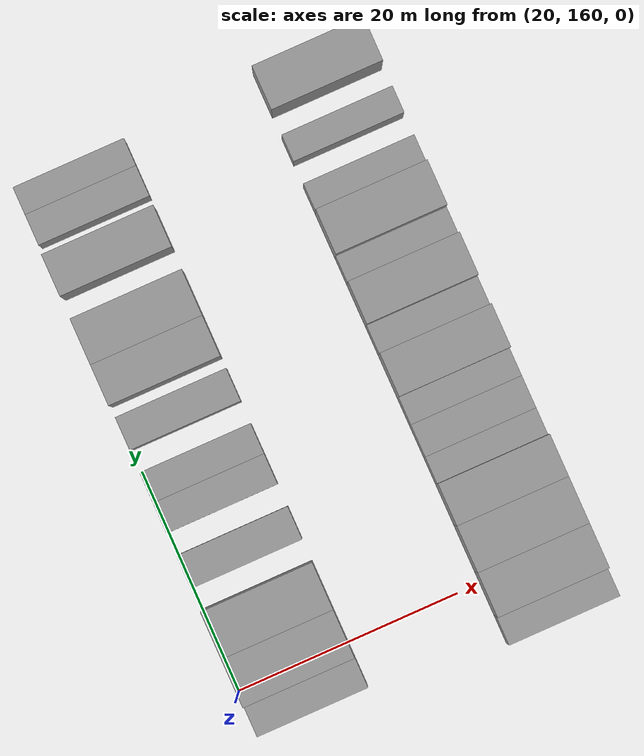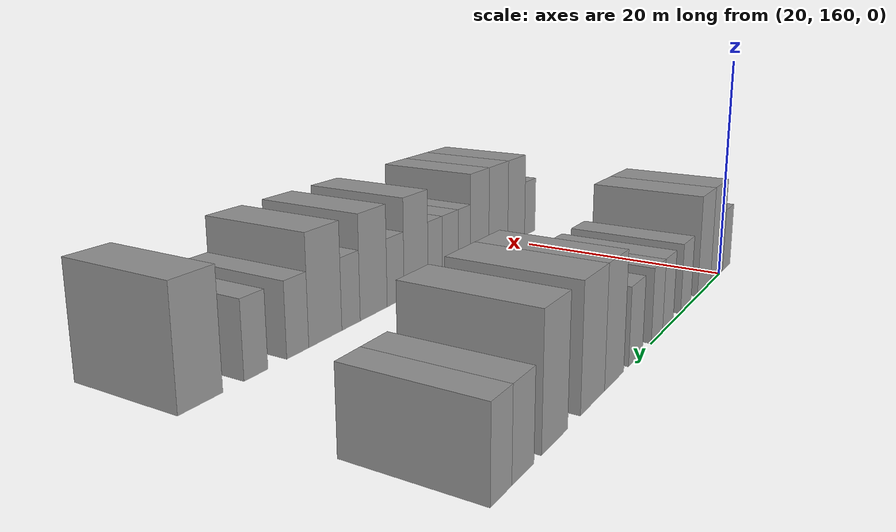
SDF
<sdf version="1.6">
 <world name="default">
  <model name="building_93">
   <static>1</static>
   <pose>25.0000 157.5284 0 0.000000 0.000000 0.000000</pose>
   <link name="link">
    <pose>0 0 3.00 0 0 0</pose>
    <collision name="collision"><geometry><box><size>10.0000 2.7844 6.0000</size></box></geometry></collision>
    <visual name="visual">
     <cast_shadows>0</cast_shadows>
     <geometry><box><size>10.0000 2.7844 6.0000</size></box></geometry>
     <material>
      <script>
       <uri>model://grey_wall/materials/scripts</uri>
       <uri>model://grey_wall/materials/textures</uri>
       <name>vrc/grey_wall</name>
      </script>
     </material>
    </visual>
   </link>
  </model>
  <model name="building_94">
   <static>1</static>
   <pose>25.0000 161.0848 0 0.000000 0.000000 0.000000</pose>
   <link name="link">
    <pose>0 0 4.50 0 0 0</pose>
    <collision name="collision"><geometry><box><size>10.0000 4.3284 9.0000</size></box></geometry></collision>
    <visual name="visual">
     <cast_shadows>0</cast_shadows>
     <geometry><box><size>10.0000 4.3284 9.0000</size></box></geometry>
     <material>
      <script>
       <uri>model://grey_wall/materials/scripts</uri>
       <uri>model://grey_wall/materials/textures</uri>
       <name>vrc/grey_wall</name>
      </script>
     </material>
    </visual>
   </link>
  </model>
  <model name="building_95">
   <static>1</static>
   <pose>25.0000 165.3684 0 0.000000 0.000000 0.000000</pose>
   <link name="link">
    <pose>0 0 4.50 0 0 0</pose>
    <collision name="collision"><geometry><box><size>10.0000 4.2388 9.0000</size></box></geometry></collision>
    <visual name="visual">
     <cast_shadows>0</cast_shadows>
     <geometry><box><size>10.0000 4.2388 9.0000</size></box></geometry>
     <material>
      <script>
       <uri>model://grey_wall/materials/scripts</uri>
       <uri>model://grey_wall/materials/textures</uri>
       <name>vrc/grey_wall</name>
      </script>
     </material>
    </visual>
   </link>
  </model>
  <model name="building_96">
   <static>1</static>
   <pose>25.0000 170.9753 0 0.000000 0.000000 0.000000</pose>
   <link name="link">
    <pose>0 0 3.00 0 0 0</pose>
    <collision name="collision"><geometry><box><size>10.0000 2.9751 6.0000</size></box></geometry></collision>
    <visual name="visual">
     <cast_shadows>0</cast_shadows>
     <geometry><box><size>10.0000 2.9751 6.0000</size></box></geometry>
     <material>
      <script>
       <uri>model://grey_wall/materials/scripts</uri>
       <uri>model://grey_wall/materials/textures</uri>
       <name>vrc/grey_wall</name>
      </script>
     </material>
    </visual>
   </link>
  </model>
  <model name="building_97">
   <static>1</static>
   <pose>25.0000 175.8394 0 0.000000 0.000000 0.000000</pose>
   <link name="link">
    <pose>0 0 3.00 0 0 0</pose>
    <collision name="collision"><geometry><box><size>10.0000 2.7530 6.0000</size></box></geometry></collision>
    <visual name="visual">
     <cast_shadows>0</cast_shadows>
     <geometry><box><size>10.0000 2.7530 6.0000</size></box></geometry>
     <material>
      <script>
       <uri>model://grey_wall/materials/scripts</uri>
       <uri>model://grey_wall/materials/textures</uri>
       <name>vrc/grey_wall</name>
      </script>
     </material>
    </visual>
   </link>
  </model>
  <model name="building_98">
   <static>1</static>
   <pose>25.0000 178.5827 0 0.000000 0.000000 0.000000</pose>
   <link name="link">
    <pose>0 0 3.00 0 0 0</pose>
    <collision name="collision"><geometry><box><size>10.0000 2.7336 6.0000</size></box></geometry></collision>
    <visual name="visual">
     <cast_shadows>0</cast_shadows>
     <geometry><box><size>10.0000 2.7336 6.0000</size></box></geometry>
     <material>
      <script>
       <uri>model://grey_wall/materials/scripts</uri>
       <uri>model://grey_wall/materials/textures</uri>
       <name>vrc/grey_wall</name>
      </script>
     </material>
    </visual>
   </link>
  </model>
  <model name="building_99">
   <static>1</static>
   <pose>25.0000 183.4373 0 0.000000 0.000000 0.000000</pose>
   <link name="link">
    <pose>0 0 3.00 0 0 0</pose>
    <collision name="collision"><geometry><box><size>10.0000 2.9756 6.0000</size></box></geometry></collision>
    <visual name="visual">
     <cast_shadows>0</cast_shadows>
     <geometry><box><size>10.0000 2.9756 6.0000</size></box></geometry>
     <material>
      <script>
       <uri>model://grey_wall/materials/scripts</uri>
       <uri>model://grey_wall/materials/textures</uri>
       <name>vrc/grey_wall</name>
      </script>
     </material>
    </visual>
   </link>
  </model>
  <model name="building_100">
   <static>1</static>
   <pose>25.0000 187.7541 0 0.000000 0.000000 0.000000</pose>
   <link name="link">
    <pose>0 0 4.50 0 0 0</pose>
    <collision name="collision"><geometry><box><size>10.0000 3.6580 9.0000</size></box></geometry></collision>
    <visual name="visual">
     <cast_shadows>0</cast_shadows>
     <geometry><box><size>10.0000 3.6580 9.0000</size></box></geometry>
     <material>
      <script>
       <uri>model://grey_wall/materials/scripts</uri>
       <uri>model://grey_wall/materials/textures</uri>
       <name>vrc/grey_wall</name>
      </script>
     </material>
    </visual>
   </link>
  </model>
  <model name="building_101">
   <static>1</static>
   <pose>25.0000 191.6501 0 0.000000 0.000000 0.000000</pose>
   <link name="link">
    <pose>0 0 4.50 0 0 0</pose>
    <collision name="collision"><geometry><box><size>10.0000 4.1341 9.0000</size></box></geometry></collision>
    <visual name="visual">
     <cast_shadows>0</cast_shadows>
     <geometry><box><size>10.0000 4.1341 9.0000</size></box></geometry>
     <material>
      <script>
       <uri>model://grey_wall/materials/scripts</uri>
       <uri>model://grey_wall/materials/textures</uri>
       <name>vrc/grey_wall</name>
      </script>
     </material>
    </visual>
   </link>
  </model>
  <model name="building_102">
   <static>1</static>
   <pose>25.0000 197.5918 0 0.000000 0.000000 0.000000</pose>
   <link name="link">
    <pose>0 0 4.50 0 0 0</pose>
    <collision name="collision"><geometry><box><size>10.0000 3.7493 9.0000</size></box></geometry></collision>
    <visual name="visual">
     <cast_shadows>0</cast_shadows>
     <geometry><box><size>10.0000 3.7493 9.0000</size></box></geometry>
     <material>
      <script>
       <uri>model://grey_wall/materials/scripts</uri>
       <uri>model://grey_wall/materials/textures</uri>
       <name>vrc/grey_wall</name>
      </script>
     </material>
    </visual>
   </link>
  </model>
  <model name="building_103">
   <static>1</static>
   <pose>25.0000 201.8452 0 0.000000 0.000000 0.000000</pose>
   <link name="link">
    <pose>0 0 3.00 0 0 0</pose>
    <collision name="collision"><geometry><box><size>10.0000 2.7576 6.0000</size></box></geometry></collision>
    <visual name="visual">
     <cast_shadows>0</cast_shadows>
     <geometry><box><size>10.0000 2.7576 6.0000</size></box></geometry>
     <material>
      <script>
       <uri>model://grey_wall/materials/scripts</uri>
       <uri>model://grey_wall/materials/textures</uri>
       <name>vrc/grey_wall</name>
      </script>
     </material>
    </visual>
   </link>
  </model>
  <model name="building_104">
   <static>1</static>
   <pose>25.0000 204.4555 0 0.000000 0.000000 0.000000</pose>
   <link name="link">
    <pose>0 0 3.00 0 0 0</pose>
    <collision name="collision"><geometry><box><size>10.0000 2.4629 6.0000</size></box></geometry></collision>
    <visual name="visual">
     <cast_shadows>0</cast_shadows>
     <geometry><box><size>10.0000 2.4629 6.0000</size></box></geometry>
     <material>
      <script>
       <uri>model://grey_wall/materials/scripts</uri>
       <uri>model://grey_wall/materials/textures</uri>
       <name>vrc/grey_wall</name>
      </script>
     </material>
    </visual>
   </link>
  </model>
  <model name="building_197">
   <static>1</static>
   <pose>47.0000 155.8884 0 0.000000 0.000000 0.000000</pose>
   <link name="link">
    <pose>0 0 3.00 0 0 0</pose>
    <collision name="collision"><geometry><box><size>10.0000 2.5943 6.0000</size></box></geometry></collision>
    <visual name="visual">
     <cast_shadows>0</cast_shadows>
     <geometry><box><size>10.0000 2.5943 6.0000</size></box></geometry>
     <material>
      <script>
       <uri>model://grey_wall/materials/scripts</uri>
       <uri>model://grey_wall/materials/textures</uri>
       <name>vrc/grey_wall</name>
      </script>
     </material>
    </visual>
   </link>
  </model>
  <model name="building_198">
   <static>1</static>
   <pose>47.0000 159.1899 0 0.000000 0.000000 0.000000</pose>
   <link name="link">
    <pose>0 0 4.50 0 0 0</pose>
    <collision name="collision"><geometry><box><size>10.0000 4.0088 9.0000</size></box></geometry></collision>
    <visual name="visual">
     <cast_shadows>0</cast_shadows>
     <geometry><box><size>10.0000 4.0088 9.0000</size></box></geometry>
     <material>
      <script>
       <uri>model://grey_wall/materials/scripts</uri>
       <uri>model://grey_wall/materials/textures</uri>
       <name>vrc/grey_wall</name>
      </script>
     </material>
    </visual>
   </link>
  </model>
  <model name="building_199">
   <static>1</static>
   <pose>47.0000 163.2865 0 0.000000 0.000000 0.000000</pose>
   <link name="link">
    <pose>0 0 4.50 0 0 0</pose>
    <collision name="collision"><geometry><box><size>10.0000 4.1844 9.0000</size></box></geometry></collision>
    <visual name="visual">
     <cast_shadows>0</cast_shadows>
     <geometry><box><size>10.0000 4.1844 9.0000</size></box></geometry>
     <material>
      <script>
       <uri>model://grey_wall/materials/scripts</uri>
       <uri>model://grey_wall/materials/textures</uri>
       <name>vrc/grey_wall</name>
      </script>
     </material>
    </visual>
   </link>
  </model>
  <model name="building_200">
   <static>1</static>
   <pose>47.0000 167.2665 0 0.000000 0.000000 0.000000</pose>
   <link name="link">
    <pose>0 0 4.50 0 0 0</pose>
    <collision name="collision"><geometry><box><size>10.0000 3.7754 9.0000</size></box></geometry></collision>
    <visual name="visual">
     <cast_shadows>0</cast_shadows>
     <geometry><box><size>10.0000 3.7754 9.0000</size></box></geometry>
     <material>
      <script>
       <uri>model://grey_wall/materials/scripts</uri>
       <uri>model://grey_wall/materials/textures</uri>
       <name>vrc/grey_wall</name>
      </script>
     </material>
    </visual>
   </link>
  </model>
  <model name="building_201">
   <static>1</static>
   <pose>47.0000 170.3555 0 0.000000 0.000000 0.000000</pose>
   <link name="link">
    <pose>0 0 3.00 0 0 0</pose>
    <collision name="collision"><geometry><box><size>10.0000 2.4027 6.0000</size></box></geometry></collision>
    <visual name="visual">
     <cast_shadows>0</cast_shadows>
     <geometry><box><size>10.0000 2.4027 6.0000</size></box></geometry>
     <material>
      <script>
       <uri>model://grey_wall/materials/scripts</uri>
       <uri>model://grey_wall/materials/textures</uri>
       <name>vrc/grey_wall</name>
      </script>
     </material>
    </visual>
   </link>
  </model>
  <model name="building_202">
   <static>1</static>
   <pose>47.0000 173.0118 0 0.000000 0.000000 0.000000</pose>
   <link name="link">
    <pose>0 0 3.00 0 0 0</pose>
    <collision name="collision"><geometry><box><size>10.0000 2.9100 6.0000</size></box></geometry></collision>
    <visual name="visual">
     <cast_shadows>0</cast_shadows>
     <geometry><box><size>10.0000 2.9100 6.0000</size></box></geometry>
     <material>
      <script>
       <uri>model://grey_wall/materials/scripts</uri>
       <uri>model://grey_wall/materials/textures</uri>
       <name>vrc/grey_wall</name>
      </script>
     </material>
    </visual>
   </link>
  </model>
  <model name="building_203">
   <static>1</static>
   <pose>47.0000 175.7090 0 0.000000 0.000000 0.000000</pose>
   <link name="link">
    <pose>0 0 3.00 0 0 0</pose>
    <collision name="collision"><geometry><box><size>10.0000 2.4843 6.0000</size></box></geometry></collision>
    <visual name="visual">
     <cast_shadows>0</cast_shadows>
     <geometry><box><size>10.0000 2.4843 6.0000</size></box></geometry>
     <material>
      <script>
       <uri>model://grey_wall/materials/scripts</uri>
       <uri>model://grey_wall/materials/textures</uri>
       <name>vrc/grey_wall</name>
      </script>
     </material>
    </visual>
   </link>
  </model>
  <model name="building_204">
   <static>1</static>
   <pose>47.0000 178.8996 0 0.000000 0.000000 0.000000</pose>
   <link name="link">
    <pose>0 0 4.50 0 0 0</pose>
    <collision name="collision"><geometry><box><size>10.0000 3.8968 9.0000</size></box></geometry></collision>
    <visual name="visual">
     <cast_shadows>0</cast_shadows>
     <geometry><box><size>10.0000 3.8968 9.0000</size></box></geometry>
     <material>
      <script>
       <uri>model://grey_wall/materials/scripts</uri>
       <uri>model://grey_wall/materials/textures</uri>
       <name>vrc/grey_wall</name>
      </script>
     </material>
    </visual>
   </link>
  </model>
  <model name="building_205">
   <static>1</static>
   <pose>47.0000 182.1428 0 0.000000 0.000000 0.000000</pose>
   <link name="link">
    <pose>0 0 3.00 0 0 0</pose>
    <collision name="collision"><geometry><box><size>10.0000 2.5897 6.0000</size></box></geometry></collision>
    <visual name="visual">
     <cast_shadows>0</cast_shadows>
     <geometry><box><size>10.0000 2.5897 6.0000</size></box></geometry>
     <material>
      <script>
       <uri>model://grey_wall/materials/scripts</uri>
       <uri>model://grey_wall/materials/textures</uri>
       <name>vrc/grey_wall</name>
      </script>
     </material>
    </visual>
   </link>
  </model>
  <model name="building_206">
   <static>1</static>
   <pose>47.0000 185.3525 0 0.000000 0.000000 0.000000</pose>
   <link name="link">
    <pose>0 0 4.50 0 0 0</pose>
    <collision name="collision"><geometry><box><size>10.0000 3.8297 9.0000</size></box></geometry></collision>
    <visual name="visual">
     <cast_shadows>0</cast_shadows>
     <geometry><box><size>10.0000 3.8297 9.0000</size></box></geometry>
     <material>
      <script>
       <uri>model://grey_wall/materials/scripts</uri>
       <uri>model://grey_wall/materials/textures</uri>
       <name>vrc/grey_wall</name>
      </script>
     </material>
    </visual>
   </link>
  </model>
  <model name="building_207">
   <static>1</static>
   <pose>47.0000 188.4806 0 0.000000 0.000000 0.000000</pose>
   <link name="link">
    <pose>0 0 3.00 0 0 0</pose>
    <collision name="collision"><geometry><box><size>10.0000 2.4265 6.0000</size></box></geometry></collision>
    <visual name="visual">
     <cast_shadows>0</cast_shadows>
     <geometry><box><size>10.0000 2.4265 6.0000</size></box></geometry>
     <material>
      <script>
       <uri>model://grey_wall/materials/scripts</uri>
       <uri>model://grey_wall/materials/textures</uri>
       <name>vrc/grey_wall</name>
      </script>
     </material>
    </visual>
   </link>
  </model>
  <model name="building_208">
   <static>1</static>
   <pose>47.0000 191.7143 0 0.000000 0.000000 0.000000</pose>
   <link name="link">
    <pose>0 0 4.50 0 0 0</pose>
    <collision name="collision"><geometry><box><size>10.0000 4.0409 9.0000</size></box></geometry></collision>
    <visual name="visual">
     <cast_shadows>0</cast_shadows>
     <geometry><box><size>10.0000 4.0409 9.0000</size></box></geometry>
     <material>
      <script>
       <uri>model://grey_wall/materials/scripts</uri>
       <uri>model://grey_wall/materials/textures</uri>
       <name>vrc/grey_wall</name>
      </script>
     </material>
    </visual>
   </link>
  </model>
  <model name="building_209">
   <static>1</static>
   <pose>47.0000 194.9815 0 0.000000 0.000000 0.000000</pose>
   <link name="link">
    <pose>0 0 3.00 0 0 0</pose>
    <collision name="collision"><geometry><box><size>10.0000 2.4935 6.0000</size></box></geometry></collision>
    <visual name="visual">
     <cast_shadows>0</cast_shadows>
     <geometry><box><size>10.0000 2.4935 6.0000</size></box></geometry>
     <material>
      <script>
       <uri>model://grey_wall/materials/scripts</uri>
       <uri>model://grey_wall/materials/textures</uri>
       <name>vrc/grey_wall</name>
      </script>
     </material>
    </visual>
   </link>
  </model>
  <model name="building_210">
   <static>1</static>
   <pose>47.0000 199.4333 0 0.000000 0.000000 0.000000</pose>
   <link name="link">
    <pose>0 0 3.00 0 0 0</pose>
    <collision name="collision"><geometry><box><size>10.0000 2.4101 6.0000</size></box></geometry></collision>
    <visual name="visual">
     <cast_shadows>0</cast_shadows>
     <geometry><box><size>10.0000 2.4101 6.0000</size></box></geometry>
     <material>
      <script>
       <uri>model://grey_wall/materials/scripts</uri>
       <uri>model://grey_wall/materials/textures</uri>
       <name>vrc/grey_wall</name>
      </script>
     </material>
    </visual>
   </link>
  </model>
  <model name="building_211">
   <static>1</static>
   <pose>47.0000 204.6137 0 0.000000 0.000000 0.000000</pose>
   <link name="link">
    <pose>0 0 4.50 0 0 0</pose>
    <collision name="collision"><geometry><box><size>10.0000 3.9507 9.0000</size></box></geometry></collision>
    <visual name="visual">
     <cast_shadows>0</cast_shadows>
     <geometry><box><size>10.0000 3.9507 9.0000</size></box></geometry>
     <material>
      <script>
       <uri>model://grey_wall/materials/scripts</uri>
       <uri>model://grey_wall/materials/textures</uri>
       <name>vrc/grey_wall</name>
      </script>
     </material>
    </visual>
   </link>
  </model>
 </world>
</sdf>
